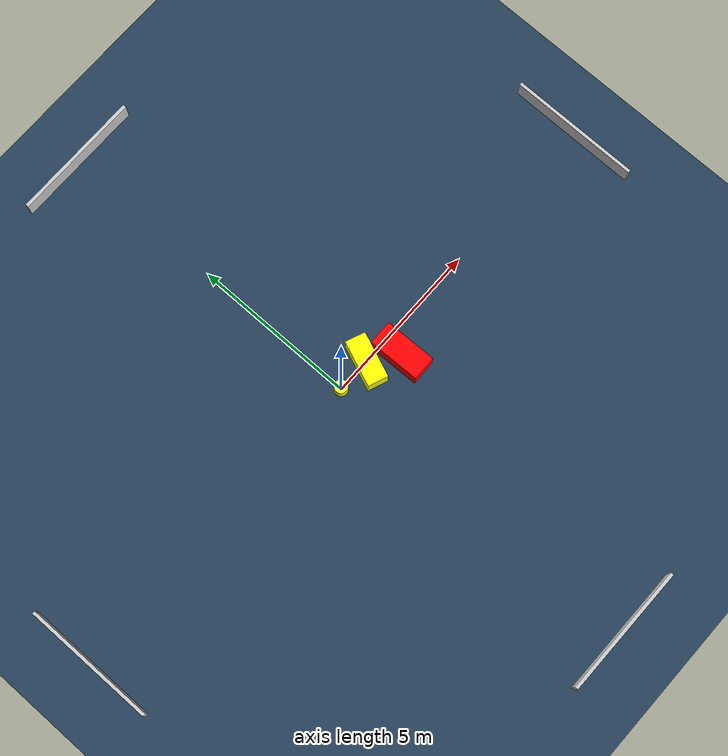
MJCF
<?xml version="1.0" ?>
<mujoco model="generated_environment">
  <option timestep="0.01" integrator="RK4" cone="elliptic"/>
  <default>
    <geom density="1"/>
  </default>
  <asset>
    <texture builtin="gradient" height="3072" name="skybox" rgb1="0.3 0.5 0.7" rgb2="0 0 0" type="skybox" width="512"/>
    <texture builtin="checker" height="300" name="groundplane" rgb1="0.2 0.3 0.4" rgb2="0.1 0.2 0.3" type="2d" width="300"/>
    <material name="groundplane" reflectance="0.2" texrepeat="5 5" texture="groundplane"/>
  </asset>
  <worldbody>
    <light dir="0 0 -1" directional="true" pos="0 0 1.5"/>
    <geom condim="3" friction="0.5 0.005 0.001" material="groundplane" name="floor" pos="0 0 0" size="0 0 0.05" type="plane"/>
    <body name="walls">
      <geom name="wall_1" condim="4" pos="-10.0 0.0 0.3" rgba="0.800000011920929 0.800000011920929 0.800000011920929 1.0" size="0.05 2.0 0.3" type="box"/>
      <geom name="wall_2" condim="4" pos="10.0 0.0 0.3" rgba="0.800000011920929 0.800000011920929 0.800000011920929 1.0" size="0.05 2.0 0.3" type="box"/>
      <geom name="wall_3" condim="4" pos="0.0 -10.0 0.3" rgba="0.800000011920929 0.800000011920929 0.800000011920929 1.0" size="2.0 0.05 0.3" type="box"/>
      <geom name="wall_4" condim="4" pos="0.0 10.0 0.3" rgba="0.800000011920929 0.800000011920929 0.800000011920929 1.0" size="2.0 0.05 0.3" type="box"/>
    </body>
    <body name="robot">
      <joint name="joint_x" type="slide" pos="0 0 0" axis="1 0 0"/>
      <joint name="joint_y" type="slide" pos="0 0 0" axis="0 1 0"/>
      <geom name="robot" type="cylinder" pos="0.0 0.0 0.2" size="0.2 0.2 0.0" mass="5.0" friction="1.0 0.005 0.0001" condim="4" rgba="1.0 1.0 0.0 1.0"/>
    </body>
    <body name="obstacle_1_movable">
      <geom name="obstacle_1_movable" condim="4" pos="1.0100009654614377 -0.044693503071540595 0.3" euler="0 0 338.29215366892424" friction="0.0 0.005 0.001" rgba="1.0 1.0 0.0 1.0" size="0.3102470782755764 0.7001067460027199 0.3" type="box" mass="0.1"/>
      <joint type="free"/>
    </body>
    <body name="obstacle_2_static">
      <geom name="obstacle_2_static" condim="4" pos="1.8367905445593988 -0.6129158763115898 0.3" euler="0 0 181.30255716644288" friction="0.0 0.005 0.001" rgba="1.0 0.0 0.0 1.0" size="0.37328898033740504 0.7916820852161666 0.3" type="box"/>
    </body>
  </worldbody>
  <actuator>
    <motor name="actuator_x" joint="joint_x" gear="1" ctrlrange="-1 1"/>
    <motor name="actuator_y" joint="joint_y" gear="1" ctrlrange="-1 1"/>
  </actuator>
</mujoco>
